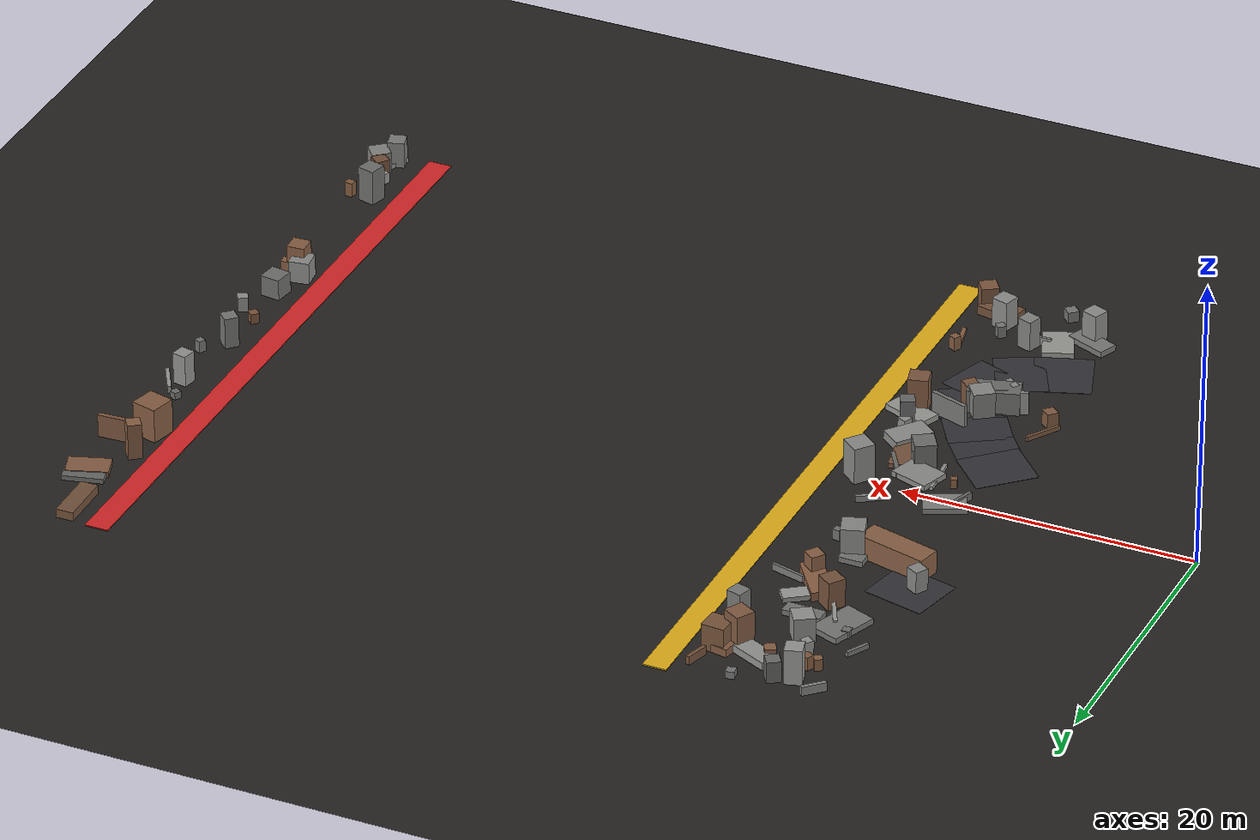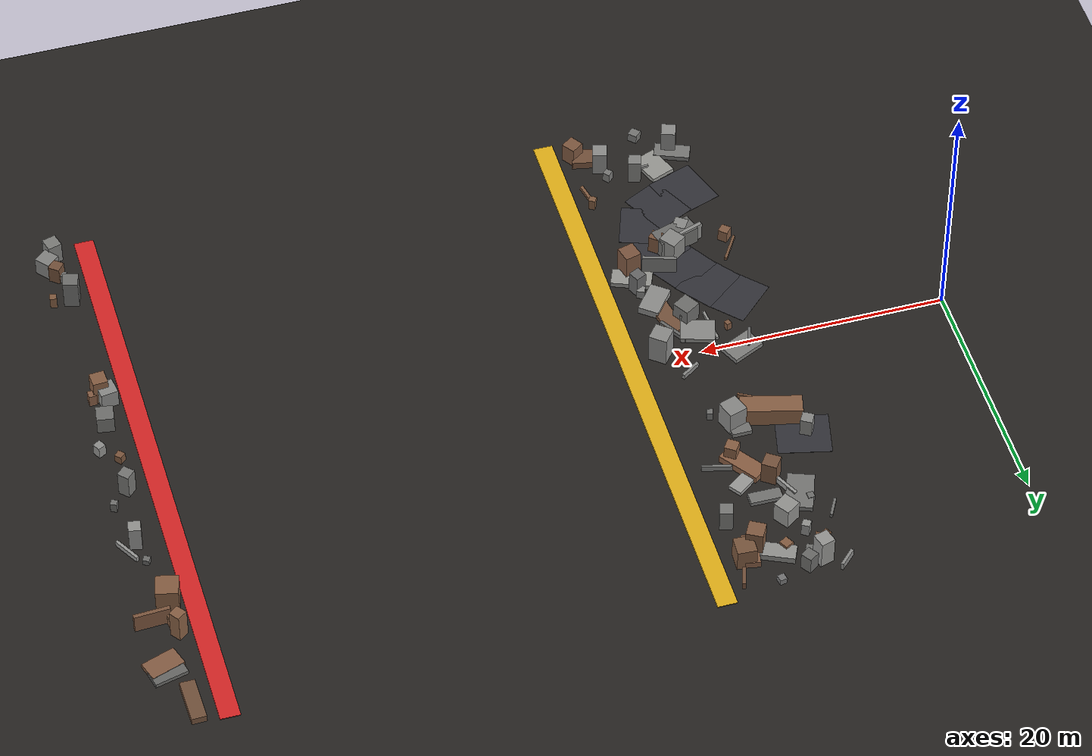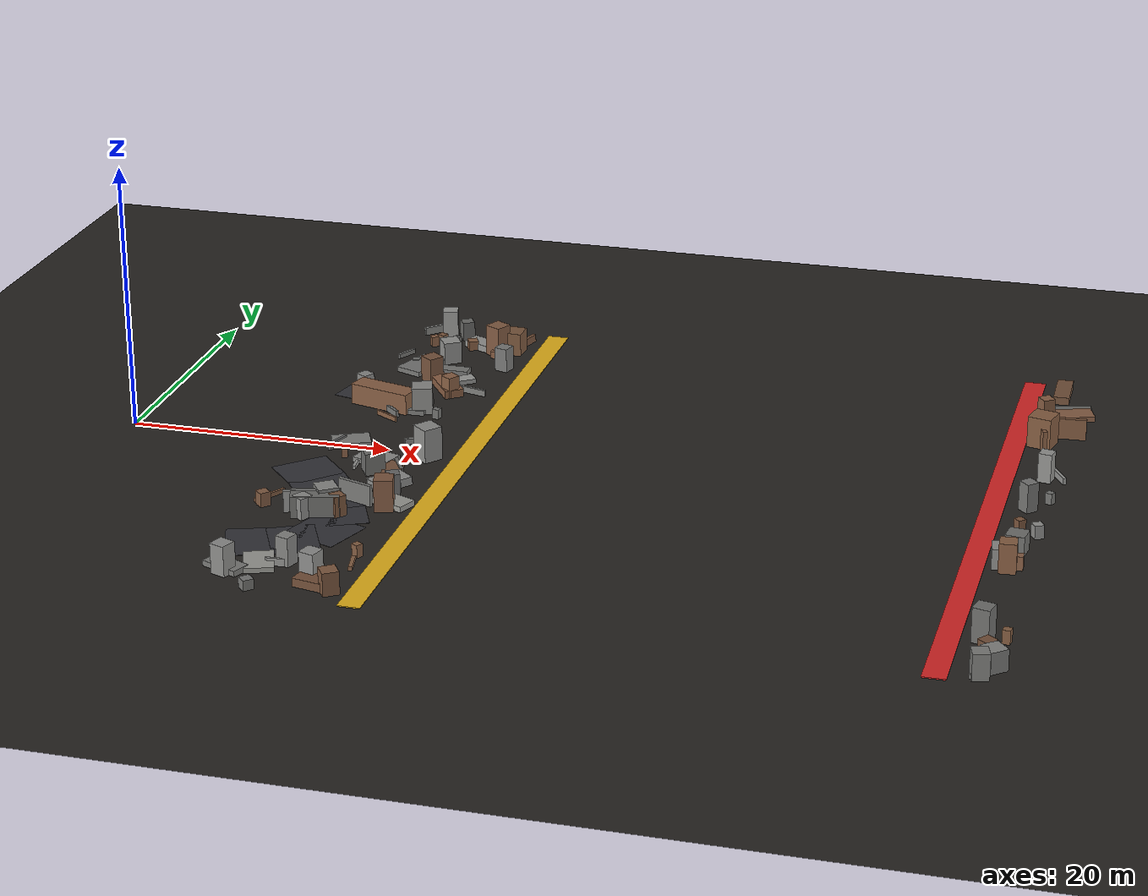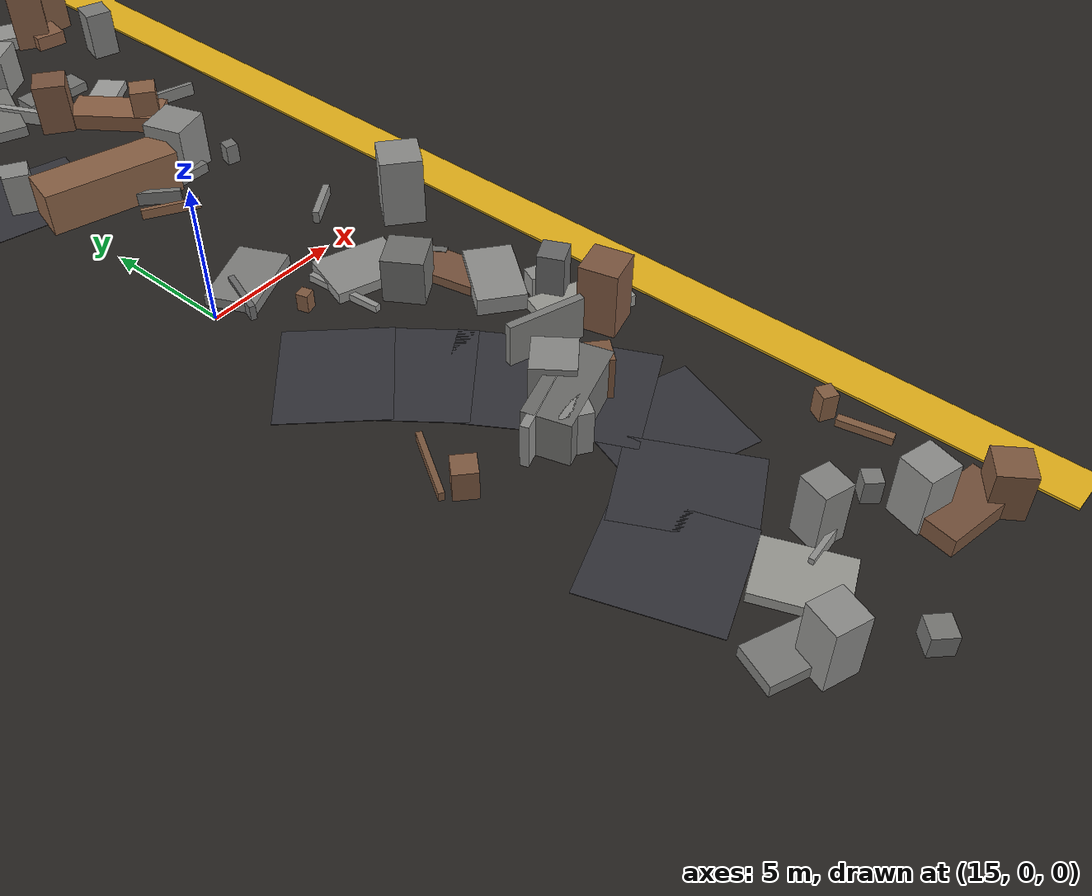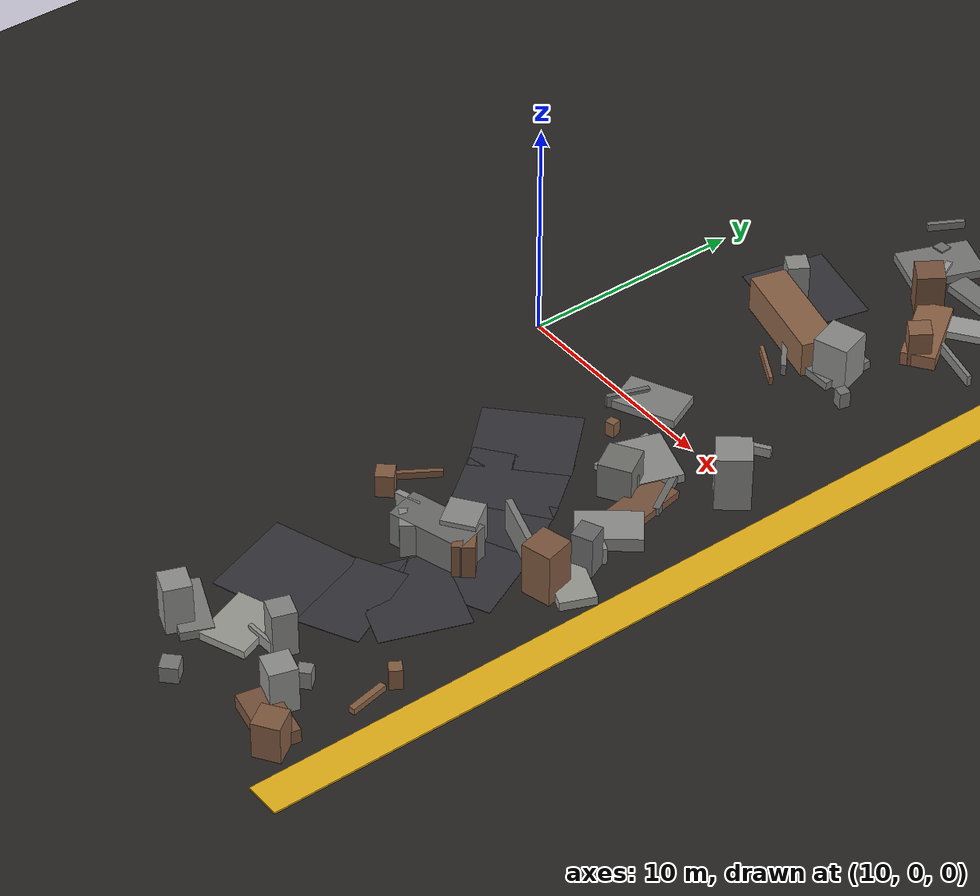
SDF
<sdf version="1.6">
 <world name="navitas_arena">
  <model name="ground_plane">
   <static>true</static>
   <link name="link">
    <collision name="collision">
     <geometry><plane><normal>0 0 1</normal><size>400 400</size></plane></geometry>
     <surface><friction><ode><mu>0.750</mu><mu2>0.750</mu2></ode></friction></surface>
    </collision>
    <visual name="visual">
     <cast_shadows>false</cast_shadows>
     <geometry><plane><normal>0 0 1</normal><size>400 400</size></plane></geometry>
     <material><ambient>0.150 0.140 0.130 1</ambient><diffuse>0.150 0.140 0.130 1</diffuse></material>
    </visual>
   </link>
  </model>
  <model name="brd_orta_E">
   <static>true</static>
   <pose>25.800 0.000 0.040 0 0 0.000</pose>
   <link name="link">
    <collision name="col"><geometry><box><size>1.600 50.000 0.080</size></box></geometry></collision>
    <visual name="vis">
     <geometry><box><size>1.600 50.000 0.080</size></box></geometry>
     <material><ambient>0.90 0.70 0.10 1</ambient><diffuse>0.90 0.70 0.10 1</diffuse></material>
    </visual>
   </link>
  </model>
  <model name="road_orta_3_4">
   <static>true</static>
   <pose>16.125 -17.214 0.040 0 0 0.333</pose>
   <link name="link">
    <collision name="col"><geometry><box><size>3.910 4.250 0.020</size></box></geometry></collision>
    <visual name="vis">
     <geometry><box><size>3.910 4.250 0.020</size></box></geometry>
     <material><ambient>0.20 0.20 0.22 1</ambient><diffuse>0.20 0.20 0.22 1</diffuse></material>
    </visual>
   </link>
  </model>
  <model name="road_orta_3_5">
   <static>true</static>
   <pose>18.643 -16.169 0.040 0 0 0.468</pose>
   <link name="link">
    <collision name="col"><geometry><box><size>3.356 4.250 0.020</size></box></geometry></collision>
    <visual name="vis">
     <geometry><box><size>3.356 4.250 0.020</size></box></geometry>
     <material><ambient>0.20 0.20 0.22 1</ambient><diffuse>0.20 0.20 0.22 1</diffuse></material>
    </visual>
   </link>
  </model>
  <model name="road_orta_3_6">
   <static>true</static>
   <pose>20.226 -14.234 0.040 0 0 1.232</pose>
   <link name="link">
    <collision name="col"><geometry><box><size>3.830 4.250 0.020</size></box></geometry></collision>
    <visual name="vis">
     <geometry><box><size>3.830 4.250 0.020</size></box></geometry>
     <material><ambient>0.20 0.20 0.22 1</ambient><diffuse>0.20 0.20 0.22 1</diffuse></material>
    </visual>
   </link>
  </model>
  <model name="road_orta_3_7">
   <static>true</static>
   <pose>20.137 -11.639 0.040 0 0 2.014</pose>
   <link name="link">
    <collision name="col"><geometry><box><size>3.586 4.250 0.020</size></box></geometry></collision>
    <visual name="vis">
     <geometry><box><size>3.586 4.250 0.020</size></box></geometry>
     <material><ambient>0.20 0.20 0.22 1</ambient><diffuse>0.20 0.20 0.22 1</diffuse></material>
    </visual>
   </link>
  </model>
  <model name="road_orta_3_8">
   <static>true</static>
   <pose>18.810 -9.213 0.040 0 0 2.125</pose>
   <link name="link">
    <collision name="col"><geometry><box><size>3.753 4.250 0.020</size></box></geometry></collision>
    <visual name="vis">
     <geometry><box><size>3.753 4.250 0.020</size></box></geometry>
     <material><ambient>0.20 0.20 0.22 1</ambient><diffuse>0.20 0.20 0.22 1</diffuse></material>
    </visual>
   </link>
  </model>
  <model name="road_orta_3_9">
   <static>true</static>
   <pose>17.297 -7.000 0.040 0 0 2.222</pose>
   <link name="link">
    <collision name="col"><geometry><box><size>3.414 4.250 0.020</size></box></geometry></collision>
    <visual name="vis">
     <geometry><box><size>3.414 4.250 0.020</size></box></geometry>
     <material><ambient>0.20 0.20 0.22 1</ambient><diffuse>0.20 0.20 0.22 1</diffuse></material>
    </visual>
   </link>
  </model>
  <model name="road_orta_3_10">
   <static>true</static>
   <pose>15.589 -5.000 0.040 0 0 2.328</pose>
   <link name="link">
    <collision name="col"><geometry><box><size>3.653 4.250 0.020</size></box></geometry></collision>
    <visual name="vis">
     <geometry><box><size>3.653 4.250 0.020</size></box></geometry>
     <material><ambient>0.20 0.20 0.22 1</ambient><diffuse>0.20 0.20 0.22 1</diffuse></material>
    </visual>
   </link>
  </model>
  <model name="road_orta_3_16">
   <static>true</static>
   <pose>15.031 10.340 0.040 0 0 1.341</pose>
   <link name="link">
    <collision name="col"><geometry><box><size>3.816 4.250 0.020</size></box></geometry></collision>
    <visual name="vis">
     <geometry><box><size>3.816 4.250 0.020</size></box></geometry>
     <material><ambient>0.20 0.20 0.22 1</ambient><diffuse>0.20 0.20 0.22 1</diffuse></material>
    </visual>
   </link>
  </model>
  <model name="blk_orta_3_0_0">
   <static>true</static>
   <pose>20.239 -11.630 0.800 0 0 0.845</pose>
   <link name="link">
    <collision name="col"><geometry><box><size>0.922 0.922 1.600</size></box></geometry></collision>
    <visual name="vis">
     <geometry><box><size>0.922 0.922 1.600</size></box></geometry>
     <material><ambient>0.49 0.34 0.24 1</ambient><diffuse>0.49 0.34 0.24 1</diffuse></material>
    </visual>
   </link>
  </model>
  <model name="blk_orta_3_0_1">
   <static>true</static>
   <pose>19.127 -10.837 0.913 0 0 2.197</pose>
   <link name="link">
    <collision name="col"><geometry><box><size>1.467 1.467 1.826</size></box></geometry></collision>
    <visual name="vis">
     <geometry><box><size>1.467 1.467 1.826</size></box></geometry>
     <material><ambient>0.54 0.54 0.53 1</ambient><diffuse>0.54 0.54 0.53 1</diffuse></material>
    </visual>
   </link>
  </model>
  <model name="blk_orta_3_0_2">
   <static>true</static>
   <pose>17.962 -12.429 0.800 0 0 2.540</pose>
   <link name="link">
    <collision name="col"><geometry><box><size>1.068 1.068 1.600</size></box></geometry></collision>
    <visual name="vis">
     <geometry><box><size>1.068 1.068 1.600</size></box></geometry>
     <material><ambient>0.55 0.55 0.54 1</ambient><diffuse>0.55 0.55 0.54 1</diffuse></material>
    </visual>
   </link>
  </model>
  <model name="blk_orta_3_0_3">
   <static>true</static>
   <pose>20.696 -9.235 0.800 0 0 2.827</pose>
   <link name="link">
    <collision name="col"><geometry><box><size>2.745 0.277 1.600</size></box></geometry></collision>
    <visual name="vis">
     <geometry><box><size>2.745 0.277 1.600</size></box></geometry>
     <material><ambient>0.48 0.48 0.47 1</ambient><diffuse>0.48 0.48 0.47 1</diffuse></material>
    </visual>
   </link>
  </model>
  <model name="blk_orta_3_0_4">
   <static>true</static>
   <pose>17.828 -11.493 0.800 0 0 0.327</pose>
   <link name="link">
    <collision name="col"><geometry><box><size>3.101 0.288 1.600</size></box></geometry></collision>
    <visual name="vis">
     <geometry><box><size>3.101 0.288 1.600</size></box></geometry>
     <material><ambient>0.56 0.56 0.55 1</ambient><diffuse>0.56 0.56 0.55 1</diffuse></material>
    </visual>
   </link>
  </model>
  <model name="blk_orta_3_0_5">
   <static>true</static>
   <pose>18.655 -11.759 0.800 0 0 0.289</pose>
   <link name="link">
    <collision name="col"><geometry><box><size>3.460 1.591 1.600</size></box></geometry></collision>
    <visual name="vis">
     <geometry><box><size>3.460 1.591 1.600</size></box></geometry>
     <material><ambient>0.43 0.43 0.42 1</ambient><diffuse>0.43 0.43 0.42 1</diffuse></material>
    </visual>
   </link>
  </model>
  <model name="blk_orta_3_1_1">
   <static>true</static>
   <pose>14.665 10.102 0.800 0 0 1.044</pose>
   <link name="link">
    <collision name="col"><geometry><box><size>0.938 0.938 1.600</size></box></geometry></collision>
    <visual name="vis">
     <geometry><box><size>0.938 0.938 1.600</size></box></geometry>
     <material><ambient>0.54 0.54 0.53 1</ambient><diffuse>0.54 0.54 0.53 1</diffuse></material>
    </visual>
   </link>
  </model>
  <model name="blk_orta_3_1_2">
   <static>true</static>
   <pose>16.909 7.972 0.800 0 0 2.888</pose>
   <link name="link">
    <collision name="col"><geometry><box><size>4.891 1.601 1.600</size></box></geometry></collision>
    <visual name="vis">
     <geometry><box><size>4.891 1.601 1.600</size></box></geometry>
     <material><ambient>0.54 0.38 0.27 1</ambient><diffuse>0.54 0.38 0.27 1</diffuse></material>
    </visual>
   </link>
  </model>
  <model name="deb_orta_1">
   <static>true</static>
   <pose>23.546 17.395 0.951 0 0 2.859</pose>
   <link name="link">
    <collision name="col"><geometry><box><size>1.044 1.044 1.901</size></box></geometry></collision>
    <visual name="vis">
     <geometry><box><size>1.044 1.044 1.901</size></box></geometry>
     <material><ambient>0.48 0.48 0.47 1</ambient><diffuse>0.48 0.48 0.47 1</diffuse></material>
    </visual>
   </link>
  </model>
  <model name="deb_orta_2">
   <static>true</static>
   <pose>22.963 -7.736 0.950 0 0 2.007</pose>
   <link name="link">
    <collision name="col"><geometry><box><size>0.940 0.940 1.900</size></box></geometry></collision>
    <visual name="vis">
     <geometry><box><size>0.940 0.940 1.900</size></box></geometry>
     <material><ambient>0.41 0.41 0.41 1</ambient><diffuse>0.41 0.41 0.41 1</diffuse></material>
    </visual>
   </link>
  </model>
  <model name="deb_orta_8">
   <static>true</static>
   <pose>17.171 16.040 0.204 0 0 1.208</pose>
   <link name="link">
    <collision name="col"><geometry><box><size>3.343 2.144 0.408</size></box></geometry></collision>
    <visual name="vis">
     <geometry><box><size>3.343 2.144 0.408</size></box></geometry>
     <material><ambient>0.47 0.47 0.46 1</ambient><diffuse>0.47 0.47 0.46 1</diffuse></material>
    </visual>
   </link>
  </model>
  <model name="deb_orta_16">
   <static>true</static>
   <pose>19.561 -19.754 1.066 0 0 2.823</pose>
   <link name="link">
    <collision name="col"><geometry><box><size>1.029 1.029 2.132</size></box></geometry></collision>
    <visual name="vis">
     <geometry><box><size>1.029 1.029 2.132</size></box></geometry>
     <material><ambient>0.52 0.52 0.51 1</ambient><diffuse>0.52 0.52 0.51 1</diffuse></material>
    </visual>
   </link>
  </model>
  <model name="deb_orta_17">
   <static>true</static>
   <pose>17.772 -20.385 0.184 0 0 1.941</pose>
   <link name="link">
    <collision name="col"><geometry><box><size>2.702 2.080 0.369</size></box></geometry></collision>
    <visual name="vis">
     <geometry><box><size>2.702 2.080 0.369</size></box></geometry>
     <material><ambient>0.60 0.60 0.58 1</ambient><diffuse>0.60 0.60 0.58 1</diffuse></material>
    </visual>
   </link>
  </model>
  <model name="deb_orta_19">
   <static>true</static>
   <pose>22.089 -5.935 0.313 0 0 0.904</pose>
   <link name="link">
    <collision name="col"><geometry><box><size>2.754 1.700 0.625</size></box></geometry></collision>
    <visual name="vis">
     <geometry><box><size>2.754 1.700 0.625</size></box></geometry>
     <material><ambient>0.56 0.56 0.55 1</ambient><diffuse>0.56 0.56 0.55 1</diffuse></material>
    </visual>
   </link>
  </model>
  <model name="deb_orta_23">
   <static>true</static>
   <pose>15.841 -21.474 0.209 0 0 2.748</pose>
   <link name="link">
    <collision name="col"><geometry><box><size>2.918 1.380 0.418</size></box></geometry></collision>
    <visual name="vis">
     <geometry><box><size>2.918 1.380 0.418</size></box></geometry>
     <material><ambient>0.48 0.48 0.47 1</ambient><diffuse>0.48 0.48 0.47 1</diffuse></material>
    </visual>
   </link>
  </model>
  <model name="deb_orta_25">
   <static>true</static>
   <pose>15.208 18.198 0.176 0 0 1.074</pose>
   <link name="link">
    <collision name="col"><geometry><box><size>1.665 0.217 0.351</size></box></geometry></collision>
    <visual name="vis">
     <geometry><box><size>1.665 0.217 0.351</size></box></geometry>
     <material><ambient>0.45 0.45 0.44 1</ambient><diffuse>0.45 0.45 0.44 1</diffuse></material>
    </visual>
   </link>
  </model>
  <model name="deb_orta_30">
   <static>true</static>
   <pose>21.057 13.911 0.175 0 0 0.624</pose>
   <link name="link">
    <collision name="col"><geometry><box><size>2.163 1.128 0.351</size></box></geometry></collision>
    <visual name="vis">
     <geometry><box><size>2.163 1.128 0.351</size></box></geometry>
     <material><ambient>0.61 0.61 0.60 1</ambient><diffuse>0.61 0.61 0.60 1</diffuse></material>
    </visual>
   </link>
  </model>
  <model name="deb_orta_42">
   <static>true</static>
   <pose>19.861 15.731 0.185 0 0 3.128</pose>
   <link name="link">
    <collision name="col"><geometry><box><size>2.571 1.011 0.370</size></box></geometry></collision>
    <visual name="vis">
     <geometry><box><size>2.571 1.011 0.370</size></box></geometry>
     <material><ambient>0.46 0.46 0.45 1</ambient><diffuse>0.46 0.46 0.45 1</diffuse></material>
    </visual>
   </link>
  </model>
  <model name="deb_orta_46">
   <static>true</static>
   <pose>22.564 11.991 0.248 0 0 2.888</pose>
   <link name="link">
    <collision name="col"><geometry><box><size>2.402 0.191 0.496</size></box></geometry></collision>
    <visual name="vis">
     <geometry><box><size>2.402 0.191 0.496</size></box></geometry>
     <material><ambient>0.50 0.50 0.49 1</ambient><diffuse>0.50 0.50 0.49 1</diffuse></material>
    </visual>
   </link>
  </model>
  <model name="deb_orta_47">
   <static>true</static>
   <pose>18.112 15.088 0.274 0 0 2.021</pose>
   <link name="link">
    <collision name="col"><geometry><box><size>2.539 0.265 0.548</size></box></geometry></collision>
    <visual name="vis">
     <geometry><box><size>2.539 0.265 0.548</size></box></geometry>
     <material><ambient>0.61 0.61 0.60 1</ambient><diffuse>0.61 0.61 0.60 1</diffuse></material>
    </visual>
   </link>
  </model>
  <model name="deb_orta_51">
   <static>true</static>
   <pose>20.430 -3.486 0.465 0 0 2.616</pose>
   <link name="link">
    <collision name="col"><geometry><box><size>0.566 0.566 0.931</size></box></geometry></collision>
    <visual name="vis">
     <geometry><box><size>0.566 0.566 0.931</size></box></geometry>
     <material><ambient>0.54 0.54 0.53 1</ambient><diffuse>0.54 0.54 0.53 1</diffuse></material>
    </visual>
   </link>
  </model>
  <model name="deb_orta_55">
   <static>true</static>
   <pose>16.877 0.513 0.198 0 0 0.431</pose>
   <link name="link">
    <collision name="col"><geometry><box><size>2.830 1.833 0.395</size></box></geometry></collision>
    <visual name="vis">
     <geometry><box><size>2.830 1.833 0.395</size></box></geometry>
     <material><ambient>0.50 0.50 0.49 1</ambient><diffuse>0.50 0.50 0.49 1</diffuse></material>
    </visual>
   </link>
  </model>
  <model name="deb_orta_60">
   <static>true</static>
   <pose>18.254 21.709 0.285 0 0 2.683</pose>
   <link name="link">
    <collision name="col"><geometry><box><size>0.582 0.582 0.569</size></box></geometry></collision>
    <visual name="vis">
     <geometry><box><size>0.582 0.582 0.569</size></box></geometry>
     <material><ambient>0.44 0.44 0.43 1</ambient><diffuse>0.44 0.44 0.43 1</diffuse></material>
    </visual>
   </link>
  </model>
  <model name="deb_orta_69">
   <static>true</static>
   <pose>17.777 6.798 0.253 0 0 2.402</pose>
   <link name="link">
    <collision name="col"><geometry><box><size>2.191 0.223 0.506</size></box></geometry></collision>
    <visual name="vis">
     <geometry><box><size>2.191 0.223 0.506</size></box></geometry>
     <material><ambient>0.47 0.47 0.46 1</ambient><diffuse>0.47 0.47 0.46 1</diffuse></material>
    </visual>
   </link>
  </model>
  <model name="deb_orta_75">
   <static>true</static>
   <pose>16.671 20.872 0.406 0 0 2.095</pose>
   <link name="link">
    <collision name="col"><geometry><box><size>0.545 0.545 0.813</size></box></geometry></collision>
    <visual name="vis">
     <geometry><box><size>0.545 0.545 0.813</size></box></geometry>
     <material><ambient>0.54 0.38 0.27 1</ambient><diffuse>0.54 0.38 0.27 1</diffuse></material>
    </visual>
   </link>
  </model>
  <model name="deb_orta_76">
   <static>true</static>
   <pose>21.166 23.896 0.254 0 0 1.741</pose>
   <link name="link">
    <collision name="col"><geometry><box><size>0.588 0.588 0.508</size></box></geometry></collision>
    <visual name="vis">
     <geometry><box><size>0.588 0.588 0.508</size></box></geometry>
     <material><ambient>0.46 0.46 0.46 1</ambient><diffuse>0.46 0.46 0.46 1</diffuse></material>
    </visual>
   </link>
  </model>
  <model name="deb_orta_79">
   <static>true</static>
   <pose>21.541 -2.526 0.188 0 0 2.113</pose>
   <link name="link">
    <collision name="col"><geometry><box><size>2.663 0.287 0.375</size></box></geometry></collision>
    <visual name="vis">
     <geometry><box><size>2.663 0.287 0.375</size></box></geometry>
     <material><ambient>0.42 0.42 0.41 1</ambient><diffuse>0.42 0.42 0.41 1</diffuse></material>
    </visual>
   </link>
  </model>
  <model name="deb_orta_84">
   <static>true</static>
   <pose>17.489 22.656 1.241 0 0 1.837</pose>
   <link name="link">
    <collision name="col"><geometry><box><size>1.167 1.167 2.482</size></box></geometry></collision>
    <visual name="vis">
     <geometry><box><size>1.167 1.167 2.482</size></box></geometry>
     <material><ambient>0.59 0.59 0.58 1</ambient><diffuse>0.59 0.59 0.58 1</diffuse></material>
    </visual>
   </link>
  </model>
  <model name="deb_orta_85">
   <static>true</static>
   <pose>23.872 -18.874 0.137 0 0 1.773</pose>
   <link name="link">
    <collision name="col"><geometry><box><size>1.757 0.277 0.275</size></box></geometry></collision>
    <visual name="vis">
     <geometry><box><size>1.757 0.277 0.275</size></box></geometry>
     <material><ambient>0.52 0.37 0.26 1</ambient><diffuse>0.52 0.37 0.26 1</diffuse></material>
    </visual>
   </link>
  </model>
  <model name="deb_orta_87">
   <static>true</static>
   <pose>21.503 1.806 0.222 0 0 0.587</pose>
   <link name="link">
    <collision name="col"><geometry><box><size>1.777 0.239 0.443</size></box></geometry></collision>
    <visual name="vis">
     <geometry><box><size>1.777 0.239 0.443</size></box></geometry>
     <material><ambient>0.54 0.54 0.53 1</ambient><diffuse>0.54 0.54 0.53 1</diffuse></material>
    </visual>
   </link>
  </model>
  <model name="deb_orta_92">
   <static>true</static>
   <pose>23.887 23.005 0.300 0 0 1.282</pose>
   <link name="link">
    <collision name="col"><geometry><box><size>1.625 0.269 0.600</size></box></geometry></collision>
    <visual name="vis">
     <geometry><box><size>1.625 0.269 0.600</size></box></geometry>
     <material><ambient>0.46 0.32 0.23 1</ambient><diffuse>0.46 0.32 0.23 1</diffuse></material>
    </visual>
   </link>
  </model>
  <model name="deb_orta_94">
   <static>true</static>
   <pose>19.603 8.001 0.190 0 0 1.578</pose>
   <link name="link">
    <collision name="col"><geometry><box><size>2.433 1.619 0.381</size></box></geometry></collision>
    <visual name="vis">
     <geometry><box><size>2.433 1.619 0.381</size></box></geometry>
     <material><ambient>0.46 0.46 0.45 1</ambient><diffuse>0.46 0.46 0.45 1</diffuse></material>
    </visual>
   </link>
  </model>
  <model name="deb_orta_106">
   <static>true</static>
   <pose>23.778 -17.514 0.475 0 0 2.601</pose>
   <link name="link">
    <collision name="col"><geometry><box><size>0.546 0.546 0.950</size></box></geometry></collision>
    <visual name="vis">
     <geometry><box><size>0.546 0.546 0.950</size></box></geometry>
     <material><ambient>0.52 0.37 0.26 1</ambient><diffuse>0.52 0.37 0.26 1</diffuse></material>
    </visual>
   </link>
  </model>
  <model name="deb_orta_107">
   <static>true</static>
   <pose>18.302 -23.975 0.377 0 0 2.346</pose>
   <link name="link">
    <collision name="col"><geometry><box><size>0.778 0.778 0.753</size></box></geometry></collision>
    <visual name="vis">
     <geometry><box><size>0.778 0.778 0.753</size></box></geometry>
     <material><ambient>0.47 0.47 0.46 1</ambient><diffuse>0.47 0.47 0.46 1</diffuse></material>
    </visual>
   </link>
  </model>
  <model name="deb_orta_109">
   <static>true</static>
   <pose>22.856 -7.123 0.384 0 0 2.705</pose>
   <link name="link">
    <collision name="col"><geometry><box><size>0.647 0.647 0.767</size></box></geometry></collision>
    <visual name="vis">
     <geometry><box><size>0.647 0.647 0.767</size></box></geometry>
     <material><ambient>0.57 0.57 0.56 1</ambient><diffuse>0.57 0.57 0.56 1</diffuse></material>
    </visual>
   </link>
  </model>
  <model name="deb_orta_111">
   <static>true</static>
   <pose>17.264 -1.897 0.334 0 0 0.295</pose>
   <link name="link">
    <collision name="col"><geometry><box><size>0.423 0.423 0.669</size></box></geometry></collision>
    <visual name="vis">
     <geometry><box><size>0.423 0.423 0.669</size></box></geometry>
     <material><ambient>0.50 0.35 0.25 1</ambient><diffuse>0.50 0.35 0.25 1</diffuse></material>
    </visual>
   </link>
  </model>
  <model name="deb_orta_112">
   <static>true</static>
   <pose>23.264 21.140 0.920 0 0 3.088</pose>
   <link name="link">
    <collision name="col"><geometry><box><size>1.557 1.557 1.840</size></box></geometry></collision>
    <visual name="vis">
     <geometry><box><size>1.557 1.557 1.840</size></box></geometry>
     <material><ambient>0.48 0.34 0.24 1</ambient><diffuse>0.48 0.34 0.24 1</diffuse></material>
    </visual>
   </link>
  </model>
  <model name="deb_orta_124">
   <static>true</static>
   <pose>18.942 18.056 0.876 0 0 0.581</pose>
   <link name="link">
    <collision name="col"><geometry><box><size>1.392 1.392 1.752</size></box></geometry></collision>
    <visual name="vis">
     <geometry><box><size>1.392 1.392 1.752</size></box></geometry>
     <material><ambient>0.58 0.58 0.57 1</ambient><diffuse>0.58 0.58 0.57 1</diffuse></material>
    </visual>
   </link>
  </model>
  <model name="deb_orta_128">
   <static>true</static>
   <pose>23.106 -8.813 0.211 0 0 2.754</pose>
   <link name="link">
    <collision name="col"><geometry><box><size>3.241 1.553 0.422</size></box></geometry></collision>
    <visual name="vis">
     <geometry><box><size>3.241 1.553 0.422</size></box></geometry>
     <material><ambient>0.60 0.60 0.58 1</ambient><diffuse>0.60 0.60 0.58 1</diffuse></material>
    </visual>
   </link>
  </model>
  <model name="deb_orta_129">
   <static>true</static>
   <pose>15.846 23.449 0.312 0 0 0.777</pose>
   <link name="link">
    <collision name="col"><geometry><box><size>1.670 0.240 0.624</size></box></geometry></collision>
    <visual name="vis">
     <geometry><box><size>1.670 0.240 0.624</size></box></geometry>
     <material><ambient>0.54 0.54 0.53 1</ambient><diffuse>0.54 0.54 0.53 1</diffuse></material>
    </visual>
   </link>
  </model>
  <model name="deb_orta_141">
   <static>true</static>
   <pose>21.485 6.726 0.377 0 0 1.345</pose>
   <link name="link">
    <collision name="col"><geometry><box><size>0.489 0.489 0.753</size></box></geometry></collision>
    <visual name="vis">
     <geometry><box><size>0.489 0.489 0.753</size></box></geometry>
     <material><ambient>0.45 0.45 0.44 1</ambient><diffuse>0.45 0.45 0.44 1</diffuse></material>
    </visual>
   </link>
  </model>
  <model name="deb_orta_154">
   <static>true</static>
   <pose>20.521 12.249 0.312 0 0 2.189</pose>
   <link name="link">
    <collision name="col"><geometry><box><size>3.559 1.481 0.624</size></box></geometry></collision>
    <visual name="vis">
     <geometry><box><size>3.559 1.481 0.624</size></box></geometry>
     <material><ambient>0.55 0.38 0.27 1</ambient><diffuse>0.55 0.38 0.27 1</diffuse></material>
    </visual>
   </link>
  </model>
  <model name="deb_orta_160">
   <static>true</static>
   <pose>17.303 21.068 0.475 0 0 1.175</pose>
   <link name="link">
    <collision name="col"><geometry><box><size>0.567 0.567 0.949</size></box></geometry></collision>
    <visual name="vis">
     <geometry><box><size>0.567 0.567 0.949</size></box></geometry>
     <material><ambient>0.50 0.35 0.25 1</ambient><diffuse>0.50 0.35 0.25 1</diffuse></material>
    </visual>
   </link>
  </model>
  <model name="deb_orta_161">
   <static>true</static>
   <pose>14.581 -11.289 0.531 0 0 2.397</pose>
   <link name="link">
    <collision name="col"><geometry><box><size>0.791 0.791 1.061</size></box></geometry></collision>
    <visual name="vis">
     <geometry><box><size>0.791 0.791 1.061</size></box></geometry>
     <material><ambient>0.51 0.36 0.26 1</ambient><diffuse>0.51 0.36 0.26 1</diffuse></material>
    </visual>
   </link>
  </model>
  <model name="deb_orta_166">
   <static>true</static>
   <pose>18.740 23.083 0.740 0 0 0.593</pose>
   <link name="link">
    <collision name="col"><geometry><box><size>0.941 0.941 1.479</size></box></geometry></collision>
    <visual name="vis">
     <geometry><box><size>0.941 0.941 1.479</size></box></geometry>
     <material><ambient>0.42 0.42 0.41 1</ambient><diffuse>0.42 0.42 0.41 1</diffuse></material>
    </visual>
   </link>
  </model>
  <model name="deb_orta_167">
   <static>true</static>
   <pose>22.601 20.657 0.280 0 0 1.394</pose>
   <link name="link">
    <collision name="col"><geometry><box><size>2.764 1.180 0.560</size></box></geometry></collision>
    <visual name="vis">
     <geometry><box><size>2.764 1.180 0.560</size></box></geometry>
     <material><ambient>0.52 0.36 0.26 1</ambient><diffuse>0.52 0.36 0.26 1</diffuse></material>
    </visual>
   </link>
  </model>
  <model name="deb_orta_168">
   <static>true</static>
   <pose>15.959 -22.153 1.114 0 0 2.784</pose>
   <link name="link">
    <collision name="col"><geometry><box><size>1.165 1.165 2.228</size></box></geometry></collision>
    <visual name="vis">
     <geometry><box><size>1.165 1.165 2.228</size></box></geometry>
     <material><ambient>0.56 0.56 0.55 1</ambient><diffuse>0.56 0.56 0.55 1</diffuse></material>
    </visual>
   </link>
  </model>
  <model name="deb_orta_172">
   <static>true</static>
   <pose>21.575 -3.963 0.177 0 0 1.768</pose>
   <link name="link">
    <collision name="col"><geometry><box><size>3.172 1.427 0.354</size></box></geometry></collision>
    <visual name="vis">
     <geometry><box><size>3.172 1.427 0.354</size></box></geometry>
     <material><ambient>0.47 0.33 0.24 1</ambient><diffuse>0.47 0.33 0.24 1</diffuse></material>
    </visual>
   </link>
  </model>
  <model name="deb_orta_173">
   <static>true</static>
   <pose>20.137 -3.815 0.831 0 0 2.122</pose>
   <link name="link">
    <collision name="col"><geometry><box><size>1.454 1.454 1.662</size></box></geometry></collision>
    <visual name="vis">
     <geometry><box><size>1.454 1.454 1.662</size></box></geometry>
     <material><ambient>0.44 0.44 0.43 1</ambient><diffuse>0.44 0.44 0.43 1</diffuse></material>
    </visual>
   </link>
  </model>
  <model name="deb_orta_175">
   <static>true</static>
   <pose>19.863 20.924 0.382 0 0 2.071</pose>
   <link name="link">
    <collision name="col"><geometry><box><size>0.761 0.761 0.763</size></box></geometry></collision>
    <visual name="vis">
     <geometry><box><size>0.761 0.761 0.763</size></box></geometry>
     <material><ambient>0.53 0.37 0.26 1</ambient><diffuse>0.53 0.37 0.26 1</diffuse></material>
    </visual>
   </link>
  </model>
  <model name="deb_orta_180">
   <static>true</static>
   <pose>21.127 11.199 0.820 0 0 2.516</pose>
   <link name="link">
    <collision name="col"><geometry><box><size>0.976 0.976 1.640</size></box></geometry></collision>
    <visual name="vis">
     <geometry><box><size>0.976 0.976 1.640</size></box></geometry>
     <material><ambient>0.54 0.38 0.27 1</ambient><diffuse>0.54 0.38 0.27 1</diffuse></material>
    </visual>
   </link>
  </model>
  <model name="deb_orta_181">
   <static>true</static>
   <pose>14.532 -9.985 0.158 0 0 1.008</pose>
   <link name="link">
    <collision name="col"><geometry><box><size>2.545 0.197 0.317</size></box></geometry></collision>
    <visual name="vis">
     <geometry><box><size>2.545 0.197 0.317</size></box></geometry>
     <material><ambient>0.48 0.34 0.24 1</ambient><diffuse>0.48 0.34 0.24 1</diffuse></material>
    </visual>
   </link>
  </model>
  <model name="deb_orta_187">
   <static>true</static>
   <pose>16.069 -0.150 0.272 0 0 1.231</pose>
   <link name="link">
    <collision name="col"><geometry><box><size>1.867 0.214 0.544</size></box></geometry></collision>
    <visual name="vis">
     <geometry><box><size>1.867 0.214 0.544</size></box></geometry>
     <material><ambient>0.42 0.42 0.42 1</ambient><diffuse>0.42 0.42 0.42 1</diffuse></material>
    </visual>
   </link>
  </model>
  <model name="deb_orta_190">
   <static>true</static>
   <pose>18.989 -20.265 0.281 0 0 0.064</pose>
   <link name="link">
    <collision name="col"><geometry><box><size>1.507 0.170 0.561</size></box></geometry></collision>
    <visual name="vis">
     <geometry><box><size>1.507 0.170 0.561</size></box></geometry>
     <material><ambient>0.57 0.57 0.56 1</ambient><diffuse>0.57 0.57 0.56 1</diffuse></material>
    </visual>
   </link>
  </model>
  <model name="deb_orta_196">
   <static>true</static>
   <pose>23.031 -9.783 1.214 0 0 0.249</pose>
   <link name="link">
    <collision name="col"><geometry><box><size>1.353 1.353 2.428</size></box></geometry></collision>
    <visual name="vis">
     <geometry><box><size>1.353 1.353 2.428</size></box></geometry>
     <material><ambient>0.49 0.34 0.25 1</ambient><diffuse>0.49 0.34 0.25 1</diffuse></material>
    </visual>
   </link>
  </model>
  <model name="deb_orta_197">
   <static>true</static>
   <pose>18.816 13.836 0.998 0 0 0.943</pose>
   <link name="link">
    <collision name="col"><geometry><box><size>1.225 1.225 1.995</size></box></geometry></collision>
    <visual name="vis">
     <geometry><box><size>1.225 1.225 1.995</size></box></geometry>
     <material><ambient>0.47 0.33 0.24 1</ambient><diffuse>0.47 0.33 0.24 1</diffuse></material>
    </visual>
   </link>
  </model>
  <model name="deb_orta_201">
   <static>true</static>
   <pose>16.544 16.726 0.240 0 0 0.062</pose>
   <link name="link">
    <collision name="col"><geometry><box><size>0.546 0.546 0.480</size></box></geometry></collision>
    <visual name="vis">
     <geometry><box><size>0.546 0.546 0.480</size></box></geometry>
     <material><ambient>0.44 0.44 0.43 1</ambient><diffuse>0.44 0.44 0.43 1</diffuse></material>
    </visual>
   </link>
  </model>
  <model name="deb_orta_209">
   <static>true</static>
   <pose>23.818 -23.181 0.847 0 0 0.598</pose>
   <link name="link">
    <collision name="col"><geometry><box><size>1.171 1.171 1.695</size></box></geometry></collision>
    <visual name="vis">
     <geometry><box><size>1.171 1.171 1.695</size></box></geometry>
     <material><ambient>0.50 0.35 0.25 1</ambient><diffuse>0.50 0.35 0.25 1</diffuse></material>
    </visual>
   </link>
  </model>
  <model name="deb_orta_210">
   <static>true</static>
   <pose>18.530 -2.396 0.133 0 0 1.651</pose>
   <link name="link">
    <collision name="col"><geometry><box><size>2.920 0.220 0.267</size></box></geometry></collision>
    <visual name="vis">
     <geometry><box><size>2.920 0.220 0.267</size></box></geometry>
     <material><ambient>0.58 0.58 0.57 1</ambient><diffuse>0.58 0.58 0.57 1</diffuse></material>
    </visual>
   </link>
  </model>
  <model name="deb_orta_212">
   <static>true</static>
   <pose>23.218 -0.588 1.279 0 0 0.888</pose>
   <link name="link">
    <collision name="col"><geometry><box><size>1.499 1.499 2.559</size></box></geometry></collision>
    <visual name="vis">
     <geometry><box><size>1.499 1.499 2.559</size></box></geometry>
     <material><ambient>0.55 0.55 0.54 1</ambient><diffuse>0.55 0.55 0.54 1</diffuse></material>
    </visual>
   </link>
  </model>
  <model name="deb_orta_224">
   <static>true</static>
   <pose>20.903 21.211 0.270 0 0 2.707</pose>
   <link name="link">
    <collision name="col"><geometry><box><size>3.354 1.358 0.540</size></box></geometry></collision>
    <visual name="vis">
     <geometry><box><size>3.354 1.358 0.540</size></box></geometry>
     <material><ambient>0.58 0.58 0.57 1</ambient><diffuse>0.58 0.58 0.57 1</diffuse></material>
    </visual>
   </link>
  </model>
  <model name="deb_orta_233">
   <static>true</static>
   <pose>17.847 5.767 0.191 0 0 2.623</pose>
   <link name="link">
    <collision name="col"><geometry><box><size>2.090 0.163 0.382</size></box></geometry></collision>
    <visual name="vis">
     <geometry><box><size>2.090 0.163 0.382</size></box></geometry>
     <material><ambient>0.54 0.38 0.27 1</ambient><diffuse>0.54 0.38 0.27 1</diffuse></material>
    </visual>
   </link>
  </model>
  <model name="deb_orta_238">
   <static>true</static>
   <pose>19.989 7.804 1.048 0 0 0.312</pose>
   <link name="link">
    <collision name="col"><geometry><box><size>1.555 1.555 2.095</size></box></geometry></collision>
    <visual name="vis">
     <geometry><box><size>1.555 1.555 2.095</size></box></geometry>
     <material><ambient>0.54 0.54 0.53 1</ambient><diffuse>0.54 0.54 0.53 1</diffuse></material>
    </visual>
   </link>
  </model>
  <model name="deb_orta_239">
   <static>true</static>
   <pose>17.909 19.799 0.557 0 0 2.557</pose>
   <link name="link">
    <collision name="col"><geometry><box><size>0.642 0.642 1.113</size></box></geometry></collision>
    <visual name="vis">
     <geometry><box><size>0.642 0.642 1.113</size></box></geometry>
     <material><ambient>0.58 0.58 0.57 1</ambient><diffuse>0.58 0.58 0.57 1</diffuse></material>
    </visual>
   </link>
  </model>
  <model name="deb_orta_240">
   <static>true</static>
   <pose>21.990 -21.529 1.044 0 0 1.286</pose>
   <link name="link">
    <collision name="col"><geometry><box><size>1.178 1.178 2.088</size></box></geometry></collision>
    <visual name="vis">
     <geometry><box><size>1.178 1.178 2.088</size></box></geometry>
     <material><ambient>0.56 0.56 0.55 1</ambient><diffuse>0.56 0.56 0.55 1</diffuse></material>
    </visual>
   </link>
  </model>
  <model name="deb_orta_245">
   <static>true</static>
   <pose>21.705 -20.171 0.413 0 0 2.298</pose>
   <link name="link">
    <collision name="col"><geometry><box><size>0.586 0.586 0.826</size></box></geometry></collision>
    <visual name="vis">
     <geometry><box><size>0.586 0.586 0.826</size></box></geometry>
     <material><ambient>0.48 0.48 0.47 1</ambient><diffuse>0.48 0.48 0.47 1</diffuse></material>
    </visual>
   </link>
  </model>
  <model name="deb_orta_248">
   <static>true</static>
   <pose>22.164 20.388 1.235 0 0 1.058</pose>
   <link name="link">
    <collision name="col"><geometry><box><size>1.347 1.347 2.470</size></box></geometry></collision>
    <visual name="vis">
     <geometry><box><size>1.347 1.347 2.470</size></box></geometry>
     <material><ambient>0.51 0.36 0.26 1</ambient><diffuse>0.51 0.36 0.26 1</diffuse></material>
    </visual>
   </link>
  </model>
  <model name="deb_orta_249">
   <static>true</static>
   <pose>19.720 -2.033 0.198 0 0 2.824</pose>
   <link name="link">
    <collision name="col"><geometry><box><size>2.725 2.095 0.397</size></box></geometry></collision>
    <visual name="vis">
     <geometry><box><size>2.725 2.095 0.397</size></box></geometry>
     <material><ambient>0.55 0.55 0.54 1</ambient><diffuse>0.55 0.55 0.54 1</diffuse></material>
    </visual>
   </link>
  </model>
  <model name="deb_orta_252">
   <static>true</static>
   <pose>22.644 -22.535 0.318 0 0 2.947</pose>
   <link name="link">
    <collision name="col"><geometry><box><size>2.737 1.493 0.636</size></box></geometry></collision>
    <visual name="vis">
     <geometry><box><size>2.737 1.493 0.636</size></box></geometry>
     <material><ambient>0.46 0.32 0.23 1</ambient><diffuse>0.46 0.32 0.23 1</diffuse></material>
    </visual>
   </link>
  </model>
  <model name="brd_zor_W">
   <static>true</static>
   <pose>64.200 0.000 0.040 0 0 0.000</pose>
   <link name="link">
    <collision name="col"><geometry><box><size>1.600 50.000 0.080</size></box></geometry></collision>
    <visual name="vis">
     <geometry><box><size>1.600 50.000 0.080</size></box></geometry>
     <material><ambient>0.85 0.15 0.15 1</ambient><diffuse>0.85 0.15 0.15 1</diffuse></material>
    </visual>
   </link>
  </model>
  <model name="blk_zor_1_2_2">
   <static>true</static>
   <pose>66.153 13.321 1.192 0 0 2.896</pose>
   <link name="link">
    <collision name="col"><geometry><box><size>1.771 1.771 2.384</size></box></geometry></collision>
    <visual name="vis">
     <geometry><box><size>1.771 1.771 2.384</size></box></geometry>
     <material><ambient>0.53 0.37 0.26 1</ambient><diffuse>0.53 0.37 0.26 1</diffuse></material>
    </visual>
   </link>
  </model>
  <model name="blk_zor_1_2_3">
   <static>true</static>
   <pose>67.735 14.933 0.800 0 0 0.051</pose>
   <link name="link">
    <collision name="col"><geometry><box><size>2.852 0.327 1.600</size></box></geometry></collision>
    <visual name="vis">
     <geometry><box><size>2.852 0.327 1.600</size></box></geometry>
     <material><ambient>0.49 0.34 0.24 1</ambient><diffuse>0.49 0.34 0.24 1</diffuse></material>
    </visual>
   </link>
  </model>
  <model name="blk_zor_1_2_4">
   <static>true</static>
   <pose>66.040 12.939 0.800 0 0 1.978</pose>
   <link name="link">
    <collision name="col"><geometry><box><size>2.269 0.321 1.600</size></box></geometry></collision>
    <visual name="vis">
     <geometry><box><size>2.269 0.321 1.600</size></box></geometry>
     <material><ambient>0.54 0.38 0.27 1</ambient><diffuse>0.54 0.38 0.27 1</diffuse></material>
    </visual>
   </link>
  </model>
  <model name="deb_zor_5">
   <static>true</static>
   <pose>66.549 23.057 0.305 0 0 1.593</pose>
   <link name="link">
    <collision name="col"><geometry><box><size>3.585 1.194 0.611</size></box></geometry></collision>
    <visual name="vis">
     <geometry><box><size>3.585 1.194 0.611</size></box></geometry>
     <material><ambient>0.45 0.32 0.23 1</ambient><diffuse>0.45 0.32 0.23 1</diffuse></material>
    </visual>
   </link>
  </model>
  <model name="deb_zor_14">
   <static>true</static>
   <pose>66.535 -8.480 1.100 0 0 0.071</pose>
   <link name="link">
    <collision name="col"><geometry><box><size>1.212 1.212 2.200</size></box></geometry></collision>
    <visual name="vis">
     <geometry><box><size>1.212 1.212 2.200</size></box></geometry>
     <material><ambient>0.53 0.37 0.26 1</ambient><diffuse>0.53 0.37 0.26 1</diffuse></material>
    </visual>
   </link>
  </model>
  <model name="deb_zor_46">
   <static>true</static>
   <pose>67.614 -22.727 0.774 0 0 0.709</pose>
   <link name="link">
    <collision name="col"><geometry><box><size>1.322 1.322 1.548</size></box></geometry></collision>
    <visual name="vis">
     <geometry><box><size>1.322 1.322 1.548</size></box></geometry>
     <material><ambient>0.52 0.52 0.51 1</ambient><diffuse>0.52 0.52 0.51 1</diffuse></material>
    </visual>
   </link>
  </model>
  <model name="deb_zor_65">
   <static>true</static>
   <pose>68.005 7.559 0.236 0 0 2.101</pose>
   <link name="link">
    <collision name="col"><geometry><box><size>2.299 0.260 0.472</size></box></geometry></collision>
    <visual name="vis">
     <geometry><box><size>2.299 0.260 0.472</size></box></geometry>
     <material><ambient>0.60 0.60 0.59 1</ambient><diffuse>0.60 0.60 0.59 1</diffuse></material>
    </visual>
   </link>
  </model>
  <model name="deb_zor_86">
   <static>true</static>
   <pose>66.757 -5.463 0.733 0 0 2.999</pose>
   <link name="link">
    <collision name="col"><geometry><box><size>1.380 1.380 1.467</size></box></geometry></collision>
    <visual name="vis">
     <geometry><box><size>1.380 1.380 1.467</size></box></geometry>
     <material><ambient>0.44 0.44 0.43 1</ambient><diffuse>0.44 0.44 0.43 1</diffuse></material>
    </visual>
   </link>
  </model>
  <model name="deb_zor_88">
   <static>true</static>
   <pose>67.862 18.967 0.195 0 0 0.332</pose>
   <link name="link">
    <collision name="col"><geometry><box><size>2.801 1.656 0.389</size></box></geometry></collision>
    <visual name="vis">
     <geometry><box><size>2.801 1.656 0.389</size></box></geometry>
     <material><ambient>0.53 0.37 0.27 1</ambient><diffuse>0.53 0.37 0.27 1</diffuse></material>
    </visual>
   </link>
  </model>
  <model name="deb_zor_108">
   <static>true</static>
   <pose>66.464 -1.638 0.362 0 0 2.332</pose>
   <link name="link">
    <collision name="col"><geometry><box><size>0.604 0.604 0.725</size></box></geometry></collision>
    <visual name="vis">
     <geometry><box><size>0.604 0.604 0.725</size></box></geometry>
     <material><ambient>0.49 0.34 0.24 1</ambient><diffuse>0.49 0.34 0.24 1</diffuse></material>
    </visual>
   </link>
  </model>
  <model name="deb_zor_128">
   <static>true</static>
   <pose>67.691 19.808 0.169 0 0 0.242</pose>
   <link name="link">
    <collision name="col"><geometry><box><size>2.736 1.376 0.338</size></box></geometry></collision>
    <visual name="vis">
     <geometry><box><size>2.736 1.376 0.338</size></box></geometry>
     <material><ambient>0.41 0.41 0.40 1</ambient><diffuse>0.41 0.41 0.40 1</diffuse></material>
    </visual>
   </link>
  </model>
  <model name="deb_zor_140">
   <static>true</static>
   <pose>66.797 8.876 0.242 0 0 1.078</pose>
   <link name="link">
    <collision name="col"><geometry><box><size>0.515 0.515 0.485</size></box></geometry></collision>
    <visual name="vis">
     <geometry><box><size>0.515 0.515 0.485</size></box></geometry>
     <material><ambient>0.43 0.43 0.42 1</ambient><diffuse>0.43 0.43 0.42 1</diffuse></material>
    </visual>
   </link>
  </model>
  <model name="deb_zor_156">
   <static>true</static>
   <pose>66.056 -7.900 0.768 0 0 0.143</pose>
   <link name="link">
    <collision name="col"><geometry><box><size>1.390 1.390 1.536</size></box></geometry></collision>
    <visual name="vis">
     <geometry><box><size>1.390 1.390 1.536</size></box></geometry>
     <material><ambient>0.55 0.55 0.54 1</ambient><diffuse>0.55 0.55 0.54 1</diffuse></material>
    </visual>
   </link>
  </model>
  <model name="deb_zor_177">
   <static>true</static>
   <pose>67.059 -21.741 0.760 0 0 2.482</pose>
   <link name="link">
    <collision name="col"><geometry><box><size>0.933 0.933 1.519</size></box></geometry></collision>
    <visual name="vis">
     <geometry><box><size>0.933 0.933 1.519</size></box></geometry>
     <material><ambient>0.46 0.32 0.23 1</ambient><diffuse>0.46 0.32 0.23 1</diffuse></material>
    </visual>
   </link>
  </model>
  <model name="deb_zor_190">
   <static>true</static>
   <pose>67.937 -18.971 0.502 0 0 1.438</pose>
   <link name="link">
    <collision name="col"><geometry><box><size>0.547 0.547 1.005</size></box></geometry></collision>
    <visual name="vis">
     <geometry><box><size>0.547 0.547 1.005</size></box></geometry>
     <material><ambient>0.51 0.36 0.25 1</ambient><diffuse>0.51 0.36 0.25 1</diffuse></material>
    </visual>
   </link>
  </model>
  <model name="deb_zor_206">
   <static>true</static>
   <pose>66.305 15.360 0.510 0 0 1.700</pose>
   <link name="link">
    <collision name="col"><geometry><box><size>0.599 0.599 1.021</size></box></geometry></collision>
    <visual name="vis">
     <geometry><box><size>0.599 0.599 1.021</size></box></geometry>
     <material><ambient>0.52 0.37 0.26 1</ambient><diffuse>0.52 0.37 0.26 1</diffuse></material>
    </visual>
   </link>
  </model>
  <model name="deb_zor_220">
   <static>true</static>
   <pose>66.621 1.529 1.091 0 0 2.366</pose>
   <link name="link">
    <collision name="col"><geometry><box><size>0.967 0.967 2.182</size></box></geometry></collision>
    <visual name="vis">
     <geometry><box><size>0.967 0.967 2.182</size></box></geometry>
     <material><ambient>0.47 0.47 0.46 1</ambient><diffuse>0.47 0.47 0.46 1</diffuse></material>
    </visual>
   </link>
  </model>
  <model name="deb_zor_229">
   <static>true</static>
   <pose>67.198 6.922 1.105 0 0 1.381</pose>
   <link name="link">
    <collision name="col"><geometry><box><size>0.975 0.975 2.209</size></box></geometry></collision>
    <visual name="vis">
     <geometry><box><size>0.975 0.975 2.209</size></box></geometry>
     <material><ambient>0.58 0.58 0.57 1</ambient><diffuse>0.58 0.58 0.57 1</diffuse></material>
    </visual>
   </link>
  </model>
  <model name="deb_zor_231">
   <static>true</static>
   <pose>67.981 3.055 0.416 0 0 2.696</pose>
   <link name="link">
    <collision name="col"><geometry><box><size>0.511 0.511 0.832</size></box></geometry></collision>
    <visual name="vis">
     <geometry><box><size>0.511 0.511 0.832</size></box></geometry>
     <material><ambient>0.45 0.45 0.44 1</ambient><diffuse>0.45 0.45 0.44 1</diffuse></material>
    </visual>
   </link>
  </model>
  <model name="deb_zor_243">
   <static>true</static>
   <pose>67.818 -2.761 0.507 0 0 2.088</pose>
   <link name="link">
    <collision name="col"><geometry><box><size>0.691 0.691 1.013</size></box></geometry></collision>
    <visual name="vis">
     <geometry><box><size>0.691 0.691 1.013</size></box></geometry>
     <material><ambient>0.57 0.57 0.56 1</ambient><diffuse>0.57 0.57 0.56 1</diffuse></material>
    </visual>
   </link>
  </model>
  <model name="deb_zor_259">
   <static>true</static>
   <pose>67.221 -8.045 0.520 0 0 0.022</pose>
   <link name="link">
    <collision name="col"><geometry><box><size>0.640 0.640 1.040</size></box></geometry></collision>
    <visual name="vis">
     <geometry><box><size>0.640 0.640 1.040</size></box></geometry>
     <material><ambient>0.53 0.37 0.27 1</ambient><diffuse>0.53 0.37 0.27 1</diffuse></material>
    </visual>
   </link>
  </model>
  <model name="deb_zor_269">
   <static>true</static>
   <pose>66.006 16.264 1.253 0 0 0.648</pose>
   <link name="link">
    <collision name="col"><geometry><box><size>0.936 0.936 2.505</size></box></geometry></collision>
    <visual name="vis">
     <geometry><box><size>0.936 0.936 2.505</size></box></geometry>
     <material><ambient>0.54 0.38 0.27 1</ambient><diffuse>0.54 0.38 0.27 1</diffuse></material>
    </visual>
   </link>
  </model>
  <model name="deb_zor_273">
   <static>true</static>
   <pose>66.895 -23.985 0.928 0 0 1.845</pose>
   <link name="link">
    <collision name="col"><geometry><box><size>1.139 1.139 1.856</size></box></geometry></collision>
    <visual name="vis">
     <geometry><box><size>1.139 1.139 1.856</size></box></geometry>
     <material><ambient>0.49 0.49 0.48 1</ambient><diffuse>0.49 0.49 0.48 1</diffuse></material>
    </visual>
   </link>
  </model>
  <model name="deb_zor_274">
   <static>true</static>
   <pose>66.421 -19.052 1.240 0 0 1.322</pose>
   <link name="link">
    <collision name="col"><geometry><box><size>1.213 1.213 2.480</size></box></geometry></collision>
    <visual name="vis">
     <geometry><box><size>1.213 1.213 2.480</size></box></geometry>
     <material><ambient>0.44 0.44 0.43 1</ambient><diffuse>0.44 0.44 0.43 1</diffuse></material>
    </visual>
   </link>
  </model>
  <model name="deb_zor_284">
   <static>true</static>
   <pose>66.605 -21.385 0.365 0 0 2.787</pose>
   <link name="link">
    <collision name="col"><geometry><box><size>0.483 0.483 0.731</size></box></geometry></collision>
    <visual name="vis">
     <geometry><box><size>0.483 0.483 0.731</size></box></geometry>
     <material><ambient>0.60 0.60 0.59 1</ambient><diffuse>0.60 0.60 0.59 1</diffuse></material>
    </visual>
   </link>
  </model>
  <model name="deb_zor_295">
   <static>true</static>
   <pose>66.840 -23.405 0.170 0 0 1.139</pose>
   <link name="link">
    <collision name="col"><geometry><box><size>2.238 0.154 0.340</size></box></geometry></collision>
    <visual name="vis">
     <geometry><box><size>2.238 0.154 0.340</size></box></geometry>
     <material><ambient>0.57 0.57 0.56 1</ambient><diffuse>0.57 0.57 0.56 1</diffuse></material>
    </visual>
   </link>
  </model>
 </world>
</sdf>
